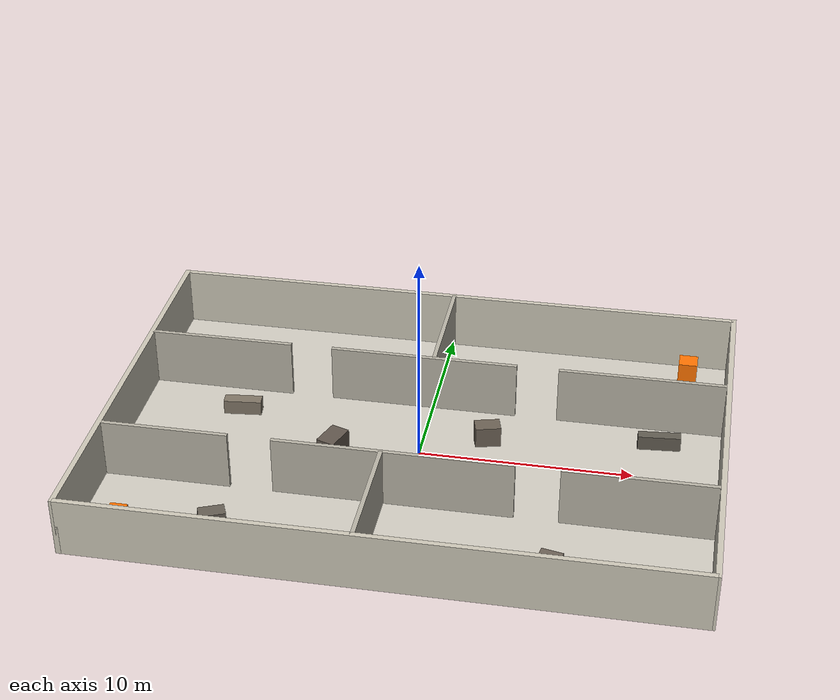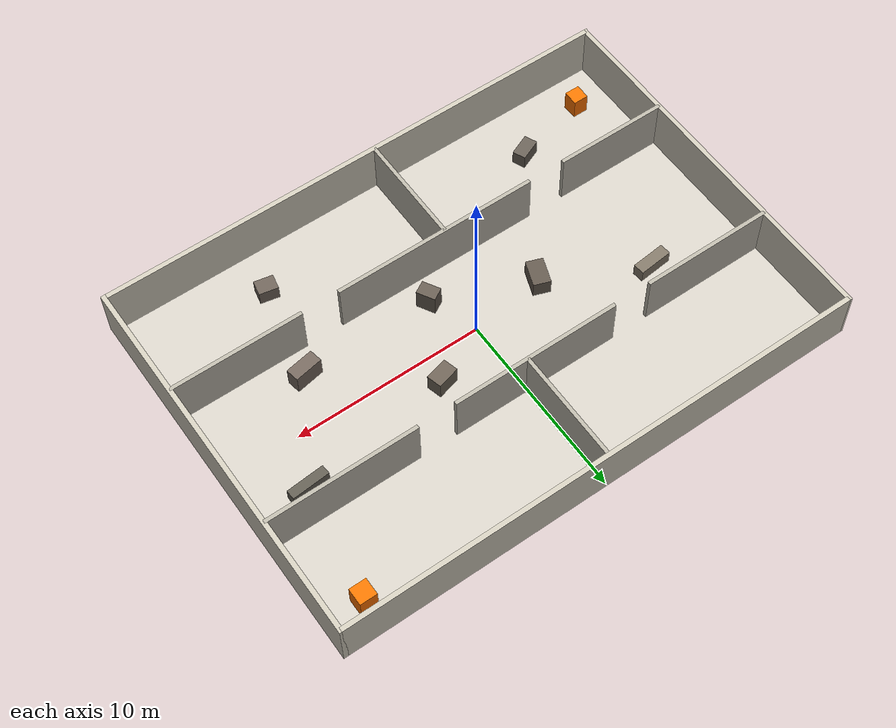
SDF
<sdf version="1.7">
 <world name="rescue_building">
  <plugin filename="gz-sim-physics-system" name="gz::sim::systems::Physics"/>
  <plugin filename="gz-sim-user-commands-system" name="gz::sim::systems::UserCommands"/>
  <plugin filename="gz-sim-scene-broadcaster-system" name="gz::sim::systems::SceneBroadcaster"/>
  <plugin filename="gz-sim-sensors-system" name="gz::sim::systems::Sensors">
   <render_engine>ogre2</render_engine>
  </plugin>
  <light type="directional" name="sun">
   <pose>0 0 15 0 0 0</pose>
   <diffuse>0.6 0.6 0.6 1</diffuse>
   <specular>0.1 0.1 0.1 1</specular>
   <attenuation>
    <range>1000</range>
    <constant>0.9</constant>
    <linear>0.01</linear>
    <quadratic>0.001</quadratic>
   </attenuation>
   <direction>0.1 0.1 -1.0</direction>
  </light>
  <light type="point" name="hall_light_1">
   <pose>0 0 2.8 0 0 0</pose>
   <diffuse>0.9 0.9 0.85 1</diffuse>
   <specular>0.2 0.2 0.2 1</specular>
   <attenuation>
    <range>12</range>
    <constant>0.5</constant>
    <linear>0.1</linear>
    <quadratic>0.02</quadratic>
   </attenuation>
  </light>
  <light type="point" name="hall_light_2">
   <pose>-9 0 2.8 0 0 0</pose>
   <diffuse>0.85 0.85 0.8 1</diffuse>
   <attenuation>
    <range>10</range>
    <constant>0.5</constant>
    <linear>0.1</linear>
    <quadratic>0.025</quadratic>
   </attenuation>
  </light>
  <light type="point" name="room_a_light">
   <pose>-7 7 2.8 0 0 0</pose>
   <diffuse>0.85 0.85 0.8 1</diffuse>
   <attenuation>
    <range>10</range>
    <constant>0.5</constant>
    <linear>0.1</linear>
    <quadratic>0.025</quadratic>
   </attenuation>
  </light>
  <light type="point" name="room_d_light">
   <pose>8 -7 2.8 0 0 0</pose>
   <diffuse>0.85 0.85 0.8 1</diffuse>
   <attenuation>
    <range>10</range>
    <constant>0.5</constant>
    <linear>0.1</linear>
    <quadratic>0.025</quadratic>
   </attenuation>
  </light>
  <model name="floor">
   <static>true</static>
   <pose>0 0 -0.05 0 0 0</pose>
   <link name="link">
    <collision name="col"><geometry><box><size>28 20 0.1</size></box></geometry></collision>
    <visual name="vis">
     <geometry><box><size>28 20 0.1</size></box></geometry>
     <material>
      <ambient>0.82 0.80 0.76 1</ambient>
      <diffuse>0.82 0.80 0.76 1</diffuse>
      <specular>0.05 0.05 0.05 1</specular>
     </material>
    </visual>
   </link>
  </model>
  <model name="outer_wall_north">
   <static>true</static>
   <pose>0 10 1.4 0 0 0</pose>
   <link name="link">
    <collision name="col"><geometry><box><size>28 0.25 2.8</size></box></geometry></collision>
    <visual name="vis">
     <geometry><box><size>28 0.25 2.8</size></box></geometry>
     <material><ambient>0.80 0.78 0.72 1</ambient><diffuse>0.80 0.78 0.72 1</diffuse></material>
    </visual>
   </link>
  </model>
  <model name="outer_wall_south">
   <static>true</static>
   <pose>0 -10 1.4 0 0 0</pose>
   <link name="link">
    <collision name="col"><geometry><box><size>28 0.25 2.8</size></box></geometry></collision>
    <visual name="vis">
     <geometry><box><size>28 0.25 2.8</size></box></geometry>
     <material><ambient>0.80 0.78 0.72 1</ambient><diffuse>0.80 0.78 0.72 1</diffuse></material>
    </visual>
   </link>
  </model>
  <model name="outer_wall_east">
   <static>true</static>
   <pose>14 0 1.4 0 0 0</pose>
   <link name="link">
    <collision name="col"><geometry><box><size>0.25 20.25 2.8</size></box></geometry></collision>
    <visual name="vis">
     <geometry><box><size>0.25 20.25 2.8</size></box></geometry>
     <material><ambient>0.80 0.78 0.72 1</ambient><diffuse>0.80 0.78 0.72 1</diffuse></material>
    </visual>
   </link>
  </model>
  <model name="outer_wall_west">
   <static>true</static>
   <pose>-14 0 1.4 0 0 0</pose>
   <link name="link">
    <collision name="col"><geometry><box><size>0.25 20.25 2.8</size></box></geometry></collision>
    <visual name="vis">
     <geometry><box><size>0.25 20.25 2.8</size></box></geometry>
     <material><ambient>0.80 0.78 0.72 1</ambient><diffuse>0.80 0.78 0.72 1</diffuse></material>
    </visual>
   </link>
  </model>
  <model name="north_wall_w">
   <static>true</static>
   <pose>-10.5 4 1.4 0 0 0</pose>
   <link name="link">
    <collision name="col"><geometry><box><size>7 0.2 2.8</size></box></geometry></collision>
    <visual name="vis">
     <geometry><box><size>7 0.2 2.8</size></box></geometry>
     <material><ambient>0.72 0.70 0.65 1</ambient><diffuse>0.72 0.70 0.65 1</diffuse></material>
    </visual>
   </link>
  </model>
  <model name="north_wall_c">
   <static>true</static>
   <pose>-0.5 4 1.4 0 0 0</pose>
   <link name="link">
    <collision name="col"><geometry><box><size>9 0.2 2.8</size></box></geometry></collision>
    <visual name="vis">
     <geometry><box><size>9 0.2 2.8</size></box></geometry>
     <material><ambient>0.72 0.70 0.65 1</ambient><diffuse>0.72 0.70 0.65 1</diffuse></material>
    </visual>
   </link>
  </model>
  <model name="north_wall_e">
   <static>true</static>
   <pose>10 4 1.4 0 0 0</pose>
   <link name="link">
    <collision name="col"><geometry><box><size>8 0.2 2.8</size></box></geometry></collision>
    <visual name="vis">
     <geometry><box><size>8 0.2 2.8</size></box></geometry>
     <material><ambient>0.72 0.70 0.65 1</ambient><diffuse>0.72 0.70 0.65 1</diffuse></material>
    </visual>
   </link>
  </model>
  <model name="north_room_divider">
   <static>true</static>
   <pose>0 7 1.4 0 0 0</pose>
   <link name="link">
    <collision name="col"><geometry><box><size>0.2 6 2.8</size></box></geometry></collision>
    <visual name="vis">
     <geometry><box><size>0.2 6 2.8</size></box></geometry>
     <material><ambient>0.72 0.70 0.65 1</ambient><diffuse>0.72 0.70 0.65 1</diffuse></material>
    </visual>
   </link>
  </model>
  <model name="south_wall_w">
   <static>true</static>
   <pose>-11 -4 1.4 0 0 0</pose>
   <link name="link">
    <collision name="col"><geometry><box><size>6 0.2 2.8</size></box></geometry></collision>
    <visual name="vis">
     <geometry><box><size>6 0.2 2.8</size></box></geometry>
     <material><ambient>0.72 0.70 0.65 1</ambient><diffuse>0.72 0.70 0.65 1</diffuse></material>
    </visual>
   </link>
  </model>
  <model name="south_wall_c">
   <static>true</static>
   <pose>-0.5 -4 1.4 0 0 0</pose>
   <link name="link">
    <collision name="col"><geometry><box><size>11 0.2 2.8</size></box></geometry></collision>
    <visual name="vis">
     <geometry><box><size>11 0.2 2.8</size></box></geometry>
     <material><ambient>0.72 0.70 0.65 1</ambient><diffuse>0.72 0.70 0.65 1</diffuse></material>
    </visual>
   </link>
  </model>
  <model name="south_wall_e">
   <static>true</static>
   <pose>10.5 -4 1.4 0 0 0</pose>
   <link name="link">
    <collision name="col"><geometry><box><size>7 0.2 2.8</size></box></geometry></collision>
    <visual name="vis">
     <geometry><box><size>7 0.2 2.8</size></box></geometry>
     <material><ambient>0.72 0.70 0.65 1</ambient><diffuse>0.72 0.70 0.65 1</diffuse></material>
    </visual>
   </link>
  </model>
  <model name="south_room_divider">
   <static>true</static>
   <pose>-1 -7 1.4 0 0 0</pose>
   <link name="link">
    <collision name="col"><geometry><box><size>0.2 6 2.8</size></box></geometry></collision>
    <visual name="vis">
     <geometry><box><size>0.2 6 2.8</size></box></geometry>
     <material><ambient>0.72 0.70 0.65 1</ambient><diffuse>0.72 0.70 0.65 1</diffuse></material>
    </visual>
   </link>
  </model>
  <model name="debris_1">
   <static>true</static>
   <pose>3 1.5 0.5 0 0 0.26</pose>
   <link name="link">
    <collision name="col"><geometry><box><size>1.2 0.8 1.0</size></box></geometry></collision>
    <visual name="vis">
     <geometry><box><size>1.2 0.8 1.0</size></box></geometry>
     <material><ambient>0.42 0.38 0.33 1</ambient><diffuse>0.42 0.38 0.33 1</diffuse></material>
    </visual>
   </link>
  </model>
  <model name="debris_2">
   <static>true</static>
   <pose>-4 -0.5 0.45 0 0 -0.35</pose>
   <link name="link">
    <collision name="col"><geometry><box><size>0.9 1.4 0.9</size></box></geometry></collision>
    <visual name="vis">
     <geometry><box><size>0.9 1.4 0.9</size></box></geometry>
     <material><ambient>0.38 0.34 0.30 1</ambient><diffuse>0.38 0.34 0.30 1</diffuse></material>
    </visual>
   </link>
  </model>
  <model name="debris_3">
   <static>true</static>
   <pose>8 -2.5 0.55 0 0 0.18</pose>
   <link name="link">
    <collision name="col"><geometry><box><size>1.5 0.7 1.1</size></box></geometry></collision>
    <visual name="vis">
     <geometry><box><size>1.5 0.7 1.1</size></box></geometry>
     <material><ambient>0.45 0.40 0.36 1</ambient><diffuse>0.45 0.40 0.36 1</diffuse></material>
    </visual>
   </link>
  </model>
  <model name="debris_4">
   <static>true</static>
   <pose>-9 2.0 0.35 0 0 0.1</pose>
   <link name="link">
    <collision name="col"><geometry><box><size>1.8 0.6 0.7</size></box></geometry></collision>
    <visual name="vis">
     <geometry><box><size>1.8 0.6 0.7</size></box></geometry>
     <material><ambient>0.50 0.46 0.40 1</ambient><diffuse>0.50 0.46 0.40 1</diffuse></material>
    </visual>
   </link>
  </model>
  <model name="debris_5">
   <static>true</static>
   <pose>1 -2.5 0.6 0 0 0.52</pose>
   <link name="link">
    <collision name="col"><geometry><box><size>0.7 1.0 1.2</size></box></geometry></collision>
    <visual name="vis">
     <geometry><box><size>0.7 1.0 1.2</size></box></geometry>
     <material><ambient>0.40 0.36 0.32 1</ambient><diffuse>0.40 0.36 0.32 1</diffuse></material>
    </visual>
   </link>
  </model>
  <model name="debris_6">
   <static>true</static>
   <pose>11 2.5 0.35 0 0 0.08</pose>
   <link name="link">
    <collision name="col"><geometry><box><size>2.0 0.5 0.7</size></box></geometry></collision>
    <visual name="vis">
     <geometry><box><size>2.0 0.5 0.7</size></box></geometry>
     <material><ambient>0.38 0.36 0.32 1</ambient><diffuse>0.38 0.36 0.32 1</diffuse></material>
    </visual>
   </link>
  </model>
  <model name="debris_7">
   <static>true</static>
   <pose>7 -7.5 0.4 0 0 -0.2</pose>
   <link name="link">
    <collision name="col"><geometry><box><size>1.0 0.8 0.8</size></box></geometry></collision>
    <visual name="vis">
     <geometry><box><size>1.0 0.8 0.8</size></box></geometry>
     <material><ambient>0.42 0.38 0.34 1</ambient><diffuse>0.42 0.38 0.34 1</diffuse></material>
    </visual>
   </link>
  </model>
  <model name="debris_8">
   <static>true</static>
   <pose>-8 -7 0.4 0 0 0.4</pose>
   <link name="link">
    <collision name="col"><geometry><box><size>1.2 0.7 0.8</size></box></geometry></collision>
    <visual name="vis">
     <geometry><box><size>1.2 0.7 0.8</size></box></geometry>
     <material><ambient>0.40 0.37 0.33 1</ambient><diffuse>0.40 0.37 0.33 1</diffuse></material>
    </visual>
   </link>
  </model>
  <model name="fire_source_1">
   <static>true</static>
   <pose>12 8.5 0.6 0 0 0</pose>
   <link name="link">
    <visual name="vis">
     <geometry><box><size>0.9 0.9 1.2</size></box></geometry>
     <material>
      <ambient>1.0 0.35 0.0 1</ambient>
      <diffuse>1.0 0.45 0.0 1</diffuse>
      <emissive>1.0 0.45 0.05 1</emissive>
     </material>
     <plugin filename="gz-sim-thermal-system" name="gz::sim::systems::Thermal">
      <temperature>600.0</temperature>
     </plugin>
    </visual>
    <light name="fire_light_1" type="point">
     <pose>0 0 0.7 0 0 0</pose>
     <diffuse>1.0 0.5 0.1 1</diffuse>
     <specular>0.6 0.3 0.1 1</specular>
     <attenuation>
      <range>9</range>
      <constant>0.4</constant>
      <linear>0.12</linear>
      <quadratic>0.02</quadratic>
     </attenuation>
    </light>
   </link>
  </model>
  <model name="fire_source_2">
   <static>true</static>
   <pose>-12 -8 0.55 0 0 0</pose>
   <link name="link">
    <visual name="vis">
     <geometry><box><size>0.8 0.8 1.1</size></box></geometry>
     <material>
      <ambient>1.0 0.35 0.0 1</ambient>
      <diffuse>1.0 0.45 0.0 1</diffuse>
      <emissive>1.0 0.45 0.05 1</emissive>
     </material>
     <plugin filename="gz-sim-thermal-system" name="gz::sim::systems::Thermal">
      <temperature>580.0</temperature>
     </plugin>
    </visual>
    <light name="fire_light_2" type="point">
     <pose>0 0 0.7 0 0 0</pose>
     <diffuse>1.0 0.5 0.1 1</diffuse>
     <specular>0.6 0.3 0.1 1</specular>
     <attenuation>
      <range>8</range>
      <constant>0.4</constant>
      <linear>0.12</linear>
      <quadratic>0.02</quadratic>
     </attenuation>
    </light>
   </link>
  </model>
 </world>
</sdf>
